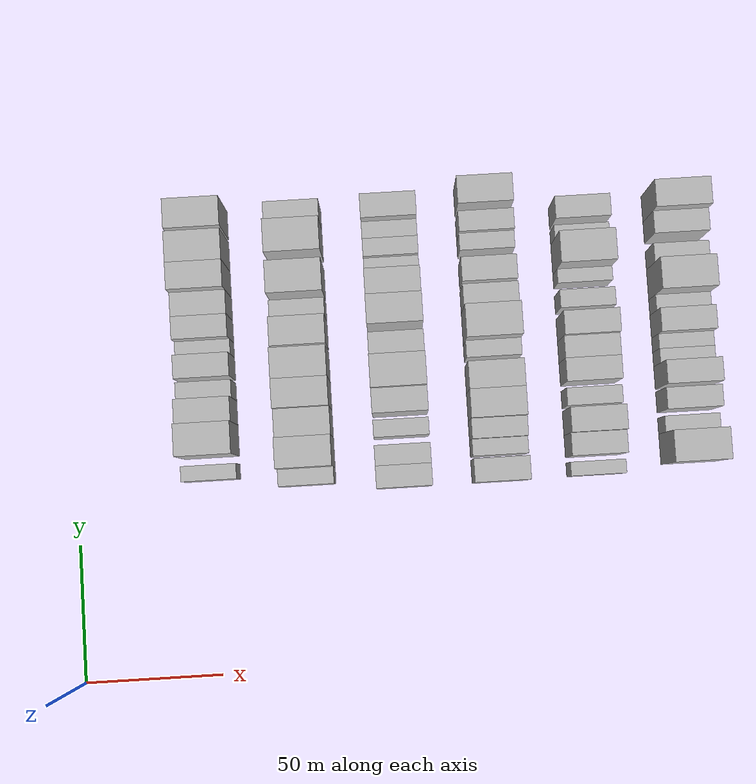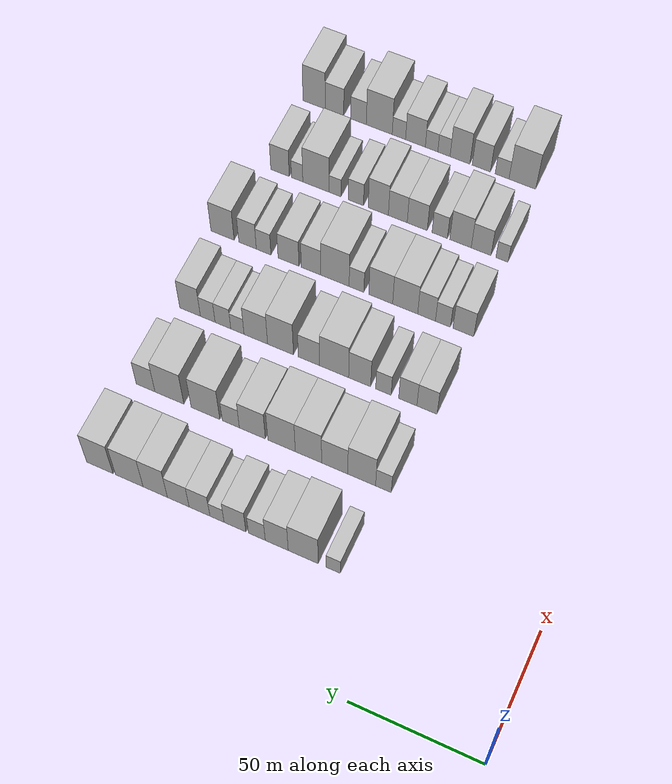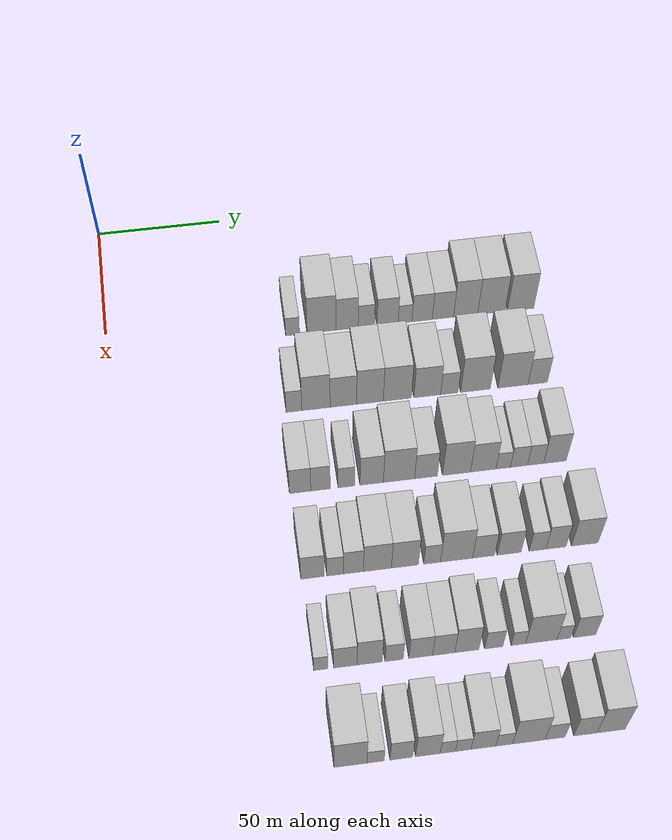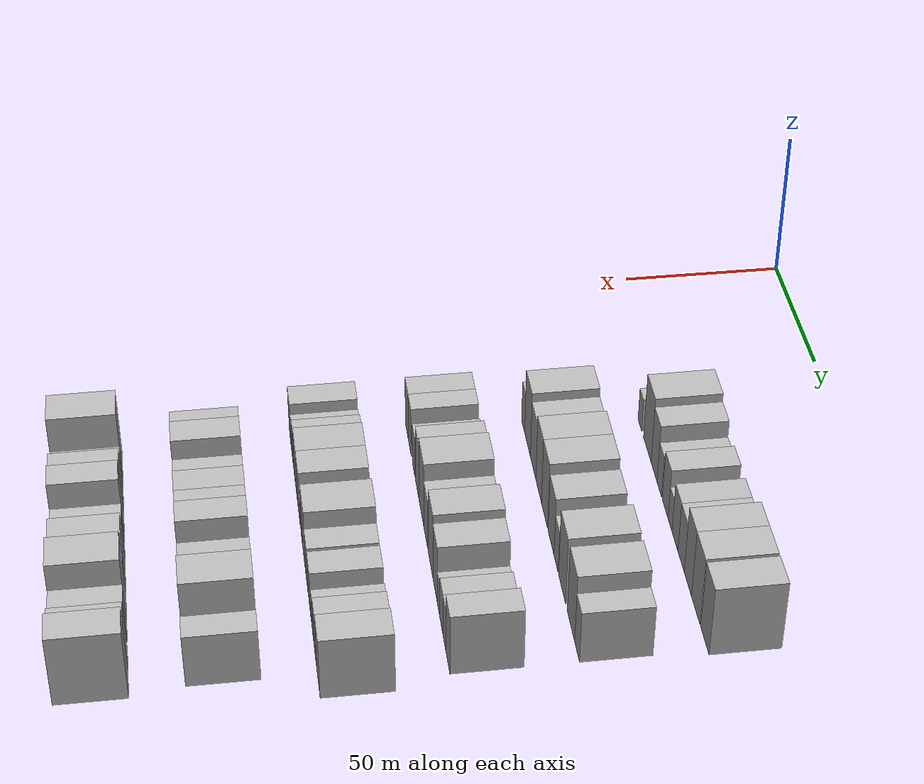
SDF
<sdf version="1.6">
 <world name="default">
  <model name="building_66">
   <static>1</static>
   <pose>50.0000 73.6622 0 0.000000 0.000000 0.000000</pose>
   <link name="link">
    <pose>0 0 6.00 0 0 0</pose>
    <collision name="collision"><geometry><box><size>20.0000 5.5355 12.0000</size></box></geometry></collision>
    <visual name="visual">
     <cast_shadows>0</cast_shadows>
     <geometry><box><size>20.0000 5.5355 12.0000</size></box></geometry>
     <material>
      <script>
       <uri>model://HANNAS_wall/materials/scripts</uri>
       <uri>model://HANNAS_wall/materials/textures</uri>
       <name>vrc/HANNAS_wall</name>
      </script>
     </material>
    </visual>
   </link>
  </model>
  <model name="building_67">
   <static>1</static>
   <pose>50.0000 85.2145 0 0.000000 0.000000 0.000000</pose>
   <link name="link">
    <pose>0 0 12.00 0 0 0</pose>
    <collision name="collision"><geometry><box><size>20.0000 11.5692 24.0000</size></box></geometry></collision>
    <visual name="visual">
     <cast_shadows>0</cast_shadows>
     <geometry><box><size>20.0000 11.5692 24.0000</size></box></geometry>
     <material>
      <script>
       <uri>model://HANNAS_wall/materials/scripts</uri>
       <uri>model://HANNAS_wall/materials/textures</uri>
       <name>vrc/HANNAS_wall</name>
      </script>
     </material>
    </visual>
   </link>
  </model>
  <model name="building_68">
   <static>1</static>
   <pose>50.0000 95.4609 0 0.000000 0.000000 0.000000</pose>
   <link name="link">
    <pose>0 0 10.50 0 0 0</pose>
    <collision name="collision"><geometry><box><size>20.0000 8.9235 21.0000</size></box></geometry></collision>
    <visual name="visual">
     <cast_shadows>0</cast_shadows>
     <geometry><box><size>20.0000 8.9235 21.0000</size></box></geometry>
     <material>
      <script>
       <uri>model://HANNAS_wall/materials/scripts</uri>
       <uri>model://HANNAS_wall/materials/textures</uri>
       <name>vrc/HANNAS_wall</name>
      </script>
     </material>
    </visual>
   </link>
  </model>
  <model name="building_69">
   <static>1</static>
   <pose>50.0000 103.2038 0 0.000000 0.000000 0.000000</pose>
   <link name="link">
    <pose>0 0 7.50 0 0 0</pose>
    <collision name="collision"><geometry><box><size>20.0000 6.5624 15.0000</size></box></geometry></collision>
    <visual name="visual">
     <cast_shadows>0</cast_shadows>
     <geometry><box><size>20.0000 6.5624 15.0000</size></box></geometry>
     <material>
      <script>
       <uri>model://HANNAS_wall/materials/scripts</uri>
       <uri>model://HANNAS_wall/materials/textures</uri>
       <name>vrc/HANNAS_wall</name>
      </script>
     </material>
    </visual>
   </link>
  </model>
  <model name="building_70">
   <static>1</static>
   <pose>50.0000 111.7547 0 0.000000 0.000000 0.000000</pose>
   <link name="link">
    <pose>0 0 9.00 0 0 0</pose>
    <collision name="collision"><geometry><box><size>20.0000 8.5394 18.0000</size></box></geometry></collision>
    <visual name="visual">
     <cast_shadows>0</cast_shadows>
     <geometry><box><size>20.0000 8.5394 18.0000</size></box></geometry>
     <material>
      <script>
       <uri>model://HANNAS_wall/materials/scripts</uri>
       <uri>model://HANNAS_wall/materials/textures</uri>
       <name>vrc/HANNAS_wall</name>
      </script>
     </material>
    </visual>
   </link>
  </model>
  <model name="building_71">
   <static>1</static>
   <pose>50.0000 118.8188 0 0.000000 0.000000 0.000000</pose>
   <link name="link">
    <pose>0 0 6.00 0 0 0</pose>
    <collision name="collision"><geometry><box><size>20.0000 5.5887 12.0000</size></box></geometry></collision>
    <visual name="visual">
     <cast_shadows>0</cast_shadows>
     <geometry><box><size>20.0000 5.5887 12.0000</size></box></geometry>
     <material>
      <script>
       <uri>model://HANNAS_wall/materials/scripts</uri>
       <uri>model://HANNAS_wall/materials/textures</uri>
       <name>vrc/HANNAS_wall</name>
      </script>
     </material>
    </visual>
   </link>
  </model>
  <model name="building_72">
   <static>1</static>
   <pose>50.0000 125.7364 0 0.000000 0.000000 0.000000</pose>
   <link name="link">
    <pose>0 0 9.00 0 0 0</pose>
    <collision name="collision"><geometry><box><size>20.0000 8.2465 18.0000</size></box></geometry></collision>
    <visual name="visual">
     <cast_shadows>0</cast_shadows>
     <geometry><box><size>20.0000 8.2465 18.0000</size></box></geometry>
     <material>
      <script>
       <uri>model://HANNAS_wall/materials/scripts</uri>
       <uri>model://HANNAS_wall/materials/textures</uri>
       <name>vrc/HANNAS_wall</name>
      </script>
     </material>
    </visual>
   </link>
  </model>
  <model name="building_73">
   <static>1</static>
   <pose>50.0000 134.1838 0 0.000000 0.000000 0.000000</pose>
   <link name="link">
    <pose>0 0 9.00 0 0 0</pose>
    <collision name="collision"><geometry><box><size>20.0000 8.6482 18.0000</size></box></geometry></collision>
    <visual name="visual">
     <cast_shadows>0</cast_shadows>
     <geometry><box><size>20.0000 8.6482 18.0000</size></box></geometry>
     <material>
      <script>
       <uri>model://HANNAS_wall/materials/scripts</uri>
       <uri>model://HANNAS_wall/materials/textures</uri>
       <name>vrc/HANNAS_wall</name>
      </script>
     </material>
    </visual>
   </link>
  </model>
  <model name="building_74">
   <static>1</static>
   <pose>50.0000 143.3903 0 0.000000 0.000000 0.000000</pose>
   <link name="link">
    <pose>0 0 12.00 0 0 0</pose>
    <collision name="collision"><geometry><box><size>20.0000 9.7649 24.0000</size></box></geometry></collision>
    <visual name="visual">
     <cast_shadows>0</cast_shadows>
     <geometry><box><size>20.0000 9.7649 24.0000</size></box></geometry>
     <material>
      <script>
       <uri>model://HANNAS_wall/materials/scripts</uri>
       <uri>model://HANNAS_wall/materials/textures</uri>
       <name>vrc/HANNAS_wall</name>
      </script>
     </material>
    </visual>
   </link>
  </model>
  <model name="building_75">
   <static>1</static>
   <pose>50.0000 153.8451 0 0.000000 0.000000 0.000000</pose>
   <link name="link">
    <pose>0 0 12.00 0 0 0</pose>
    <collision name="collision"><geometry><box><size>20.0000 11.1446 24.0000</size></box></geometry></collision>
    <visual name="visual">
     <cast_shadows>0</cast_shadows>
     <geometry><box><size>20.0000 11.1446 24.0000</size></box></geometry>
     <material>
      <script>
       <uri>model://HANNAS_wall/materials/scripts</uri>
       <uri>model://HANNAS_wall/materials/textures</uri>
       <name>vrc/HANNAS_wall</name>
      </script>
     </material>
    </visual>
   </link>
  </model>
  <model name="building_76">
   <static>1</static>
   <pose>50.0000 165.7647 0 0.000000 0.000000 0.000000</pose>
   <link name="link">
    <pose>0 0 12.00 0 0 0</pose>
    <collision name="collision"><geometry><box><size>20.0000 10.6947 24.0000</size></box></geometry></collision>
    <visual name="visual">
     <cast_shadows>0</cast_shadows>
     <geometry><box><size>20.0000 10.6947 24.0000</size></box></geometry>
     <material>
      <script>
       <uri>model://HANNAS_wall/materials/scripts</uri>
       <uri>model://HANNAS_wall/materials/textures</uri>
       <name>vrc/HANNAS_wall</name>
      </script>
     </material>
    </visual>
   </link>
  </model>
  <model name="building_200">
   <static>1</static>
   <pose>85.0000 70.0856 0 0.000000 0.000000 0.000000</pose>
   <link name="link">
    <pose>0 0 7.50 0 0 0</pose>
    <collision name="collision"><geometry><box><size>20.0000 6.0896 15.0000</size></box></geometry></collision>
    <visual name="visual">
     <cast_shadows>0</cast_shadows>
     <geometry><box><size>20.0000 6.0896 15.0000</size></box></geometry>
     <material>
      <script>
       <uri>model://HANNAS_wall/materials/scripts</uri>
       <uri>model://HANNAS_wall/materials/textures</uri>
       <name>vrc/HANNAS_wall</name>
      </script>
     </material>
    </visual>
   </link>
  </model>
  <model name="building_201">
   <static>1</static>
   <pose>85.0000 78.6139 0 0.000000 0.000000 0.000000</pose>
   <link name="link">
    <pose>0 0 12.00 0 0 0</pose>
    <collision name="collision"><geometry><box><size>20.0000 10.9671 24.0000</size></box></geometry></collision>
    <visual name="visual">
     <cast_shadows>0</cast_shadows>
     <geometry><box><size>20.0000 10.9671 24.0000</size></box></geometry>
     <material>
      <script>
       <uri>model://HANNAS_wall/materials/scripts</uri>
       <uri>model://HANNAS_wall/materials/textures</uri>
       <name>vrc/HANNAS_wall</name>
      </script>
     </material>
    </visual>
   </link>
  </model>
  <model name="building_202">
   <static>1</static>
   <pose>85.0000 89.2255 0 0.000000 0.000000 0.000000</pose>
   <link name="link">
    <pose>0 0 10.50 0 0 0</pose>
    <collision name="collision"><geometry><box><size>20.0000 10.2559 21.0000</size></box></geometry></collision>
    <visual name="visual">
     <cast_shadows>0</cast_shadows>
     <geometry><box><size>20.0000 10.2559 21.0000</size></box></geometry>
     <material>
      <script>
       <uri>model://HANNAS_wall/materials/scripts</uri>
       <uri>model://HANNAS_wall/materials/textures</uri>
       <name>vrc/HANNAS_wall</name>
      </script>
     </material>
    </visual>
   </link>
  </model>
  <model name="building_203">
   <static>1</static>
   <pose>85.0000 99.5866 0 0.000000 0.000000 0.000000</pose>
   <link name="link">
    <pose>0 0 12.00 0 0 0</pose>
    <collision name="collision"><geometry><box><size>20.0000 10.4663 24.0000</size></box></geometry></collision>
    <visual name="visual">
     <cast_shadows>0</cast_shadows>
     <geometry><box><size>20.0000 10.4663 24.0000</size></box></geometry>
     <material>
      <script>
       <uri>model://HANNAS_wall/materials/scripts</uri>
       <uri>model://HANNAS_wall/materials/textures</uri>
       <name>vrc/HANNAS_wall</name>
      </script>
     </material>
    </visual>
   </link>
  </model>
  <model name="building_204">
   <static>1</static>
   <pose>85.0000 110.2987 0 0.000000 0.000000 0.000000</pose>
   <link name="link">
    <pose>0 0 12.00 0 0 0</pose>
    <collision name="collision"><geometry><box><size>20.0000 10.9579 24.0000</size></box></geometry></collision>
    <visual name="visual">
     <cast_shadows>0</cast_shadows>
     <geometry><box><size>20.0000 10.9579 24.0000</size></box></geometry>
     <material>
      <script>
       <uri>model://HANNAS_wall/materials/scripts</uri>
       <uri>model://HANNAS_wall/materials/textures</uri>
       <name>vrc/HANNAS_wall</name>
      </script>
     </material>
    </visual>
   </link>
  </model>
  <model name="building_205">
   <static>1</static>
   <pose>85.0000 122.0157 0 0.000000 0.000000 0.000000</pose>
   <link name="link">
    <pose>0 0 10.50 0 0 0</pose>
    <collision name="collision"><geometry><box><size>20.0000 10.4762 21.0000</size></box></geometry></collision>
    <visual name="visual">
     <cast_shadows>0</cast_shadows>
     <geometry><box><size>20.0000 10.4762 21.0000</size></box></geometry>
     <material>
      <script>
       <uri>model://HANNAS_wall/materials/scripts</uri>
       <uri>model://HANNAS_wall/materials/textures</uri>
       <name>vrc/HANNAS_wall</name>
      </script>
     </material>
    </visual>
   </link>
  </model>
  <model name="building_206">
   <static>1</static>
   <pose>85.0000 130.7040 0 0.000000 0.000000 0.000000</pose>
   <link name="link">
    <pose>0 0 7.50 0 0 0</pose>
    <collision name="collision"><geometry><box><size>20.0000 6.9004 15.0000</size></box></geometry></collision>
    <visual name="visual">
     <cast_shadows>0</cast_shadows>
     <geometry><box><size>20.0000 6.9004 15.0000</size></box></geometry>
     <material>
      <script>
       <uri>model://HANNAS_wall/materials/scripts</uri>
       <uri>model://HANNAS_wall/materials/textures</uri>
       <name>vrc/HANNAS_wall</name>
      </script>
     </material>
    </visual>
   </link>
  </model>
  <model name="building_207">
   <static>1</static>
   <pose>85.0000 141.0026 0 0.000000 0.000000 0.000000</pose>
   <link name="link">
    <pose>0 0 12.00 0 0 0</pose>
    <collision name="collision"><geometry><box><size>20.0000 11.6968 24.0000</size></box></geometry></collision>
    <visual name="visual">
     <cast_shadows>0</cast_shadows>
     <geometry><box><size>20.0000 11.6968 24.0000</size></box></geometry>
     <material>
      <script>
       <uri>model://HANNAS_wall/materials/scripts</uri>
       <uri>model://HANNAS_wall/materials/textures</uri>
       <name>vrc/HANNAS_wall</name>
      </script>
     </material>
    </visual>
   </link>
  </model>
  <model name="building_208">
   <static>1</static>
   <pose>85.0000 155.7988 0 0.000000 0.000000 0.000000</pose>
   <link name="link">
    <pose>0 0 12.00 0 0 0</pose>
    <collision name="collision"><geometry><box><size>20.0000 11.8956 24.0000</size></box></geometry></collision>
    <visual name="visual">
     <cast_shadows>0</cast_shadows>
     <geometry><box><size>20.0000 11.8956 24.0000</size></box></geometry>
     <material>
      <script>
       <uri>model://HANNAS_wall/materials/scripts</uri>
       <uri>model://HANNAS_wall/materials/textures</uri>
       <name>vrc/HANNAS_wall</name>
      </script>
     </material>
    </visual>
   </link>
  </model>
  <model name="building_209">
   <static>1</static>
   <pose>85.0000 165.6041 0 0.000000 0.000000 0.000000</pose>
   <link name="link">
    <pose>0 0 9.00 0 0 0</pose>
    <collision name="collision"><geometry><box><size>20.0000 7.7152 18.0000</size></box></geometry></collision>
    <visual name="visual">
     <cast_shadows>0</cast_shadows>
     <geometry><box><size>20.0000 7.7152 18.0000</size></box></geometry>
     <material>
      <script>
       <uri>model://HANNAS_wall/materials/scripts</uri>
       <uri>model://HANNAS_wall/materials/textures</uri>
       <name>vrc/HANNAS_wall</name>
      </script>
     </material>
    </visual>
   </link>
  </model>
  <model name="building_317">
   <static>1</static>
   <pose>120.0000 68.2392 0 0.000000 0.000000 0.000000</pose>
   <link name="link">
    <pose>0 0 9.00 0 0 0</pose>
    <collision name="collision"><geometry><box><size>20.0000 8.0052 18.0000</size></box></geometry></collision>
    <visual name="visual">
     <cast_shadows>0</cast_shadows>
     <geometry><box><size>20.0000 8.0052 18.0000</size></box></geometry>
     <material>
      <script>
       <uri>model://HANNAS_wall/materials/scripts</uri>
       <uri>model://HANNAS_wall/materials/textures</uri>
       <name>vrc/HANNAS_wall</name>
      </script>
     </material>
    </visual>
   </link>
  </model>
  <model name="building_318">
   <static>1</static>
   <pose>120.0000 75.8827 0 0.000000 0.000000 0.000000</pose>
   <link name="link">
    <pose>0 0 9.00 0 0 0</pose>
    <collision name="collision"><geometry><box><size>20.0000 7.2819 18.0000</size></box></geometry></collision>
    <visual name="visual">
     <cast_shadows>0</cast_shadows>
     <geometry><box><size>20.0000 7.2819 18.0000</size></box></geometry>
     <material>
      <script>
       <uri>model://HANNAS_wall/materials/scripts</uri>
       <uri>model://HANNAS_wall/materials/textures</uri>
       <name>vrc/HANNAS_wall</name>
      </script>
     </material>
    </visual>
   </link>
  </model>
  <model name="building_319">
   <static>1</static>
   <pose>120.0000 85.6360 0 0.000000 0.000000 0.000000</pose>
   <link name="link">
    <pose>0 0 7.50 0 0 0</pose>
    <collision name="collision"><geometry><box><size>20.0000 6.2247 15.0000</size></box></geometry></collision>
    <visual name="visual">
     <cast_shadows>0</cast_shadows>
     <geometry><box><size>20.0000 6.2247 15.0000</size></box></geometry>
     <material>
      <script>
       <uri>model://HANNAS_wall/materials/scripts</uri>
       <uri>model://HANNAS_wall/materials/textures</uri>
       <name>vrc/HANNAS_wall</name>
      </script>
     </material>
    </visual>
   </link>
  </model>
  <model name="building_320">
   <static>1</static>
   <pose>120.0000 95.1866 0 0.000000 0.000000 0.000000</pose>
   <link name="link">
    <pose>0 0 10.50 0 0 0</pose>
    <collision name="collision"><geometry><box><size>20.0000 8.8765 21.0000</size></box></geometry></collision>
    <visual name="visual">
     <cast_shadows>0</cast_shadows>
     <geometry><box><size>20.0000 8.8765 21.0000</size></box></geometry>
     <material>
      <script>
       <uri>model://HANNAS_wall/materials/scripts</uri>
       <uri>model://HANNAS_wall/materials/textures</uri>
       <name>vrc/HANNAS_wall</name>
      </script>
     </material>
    </visual>
   </link>
  </model>
  <model name="building_321">
   <static>1</static>
   <pose>120.0000 105.5461 0 0.000000 0.000000 0.000000</pose>
   <link name="link">
    <pose>0 0 12.00 0 0 0</pose>
    <collision name="collision"><geometry><box><size>20.0000 11.8425 24.0000</size></box></geometry></collision>
    <visual name="visual">
     <cast_shadows>0</cast_shadows>
     <geometry><box><size>20.0000 11.8425 24.0000</size></box></geometry>
     <material>
      <script>
       <uri>model://HANNAS_wall/materials/scripts</uri>
       <uri>model://HANNAS_wall/materials/textures</uri>
       <name>vrc/HANNAS_wall</name>
      </script>
     </material>
    </visual>
   </link>
  </model>
  <model name="building_322">
   <static>1</static>
   <pose>120.0000 115.7819 0 0.000000 0.000000 0.000000</pose>
   <link name="link">
    <pose>0 0 9.00 0 0 0</pose>
    <collision name="collision"><geometry><box><size>20.0000 8.6290 18.0000</size></box></geometry></collision>
    <visual name="visual">
     <cast_shadows>0</cast_shadows>
     <geometry><box><size>20.0000 8.6290 18.0000</size></box></geometry>
     <material>
      <script>
       <uri>model://HANNAS_wall/materials/scripts</uri>
       <uri>model://HANNAS_wall/materials/textures</uri>
       <name>vrc/HANNAS_wall</name>
      </script>
     </material>
    </visual>
   </link>
  </model>
  <model name="building_323">
   <static>1</static>
   <pose>120.0000 127.4299 0 0.000000 0.000000 0.000000</pose>
   <link name="link">
    <pose>0 0 12.00 0 0 0</pose>
    <collision name="collision"><geometry><box><size>20.0000 10.6669 24.0000</size></box></geometry></collision>
    <visual name="visual">
     <cast_shadows>0</cast_shadows>
     <geometry><box><size>20.0000 10.6669 24.0000</size></box></geometry>
     <material>
      <script>
       <uri>model://HANNAS_wall/materials/scripts</uri>
       <uri>model://HANNAS_wall/materials/textures</uri>
       <name>vrc/HANNAS_wall</name>
      </script>
     </material>
    </visual>
   </link>
  </model>
  <model name="building_324">
   <static>1</static>
   <pose>120.0000 137.6440 0 0.000000 0.000000 0.000000</pose>
   <link name="link">
    <pose>0 0 10.50 0 0 0</pose>
    <collision name="collision"><geometry><box><size>20.0000 9.7614 21.0000</size></box></geometry></collision>
    <visual name="visual">
     <cast_shadows>0</cast_shadows>
     <geometry><box><size>20.0000 9.7614 21.0000</size></box></geometry>
     <material>
      <script>
       <uri>model://HANNAS_wall/materials/scripts</uri>
       <uri>model://HANNAS_wall/materials/textures</uri>
       <name>vrc/HANNAS_wall</name>
      </script>
     </material>
    </visual>
   </link>
  </model>
  <model name="building_325">
   <static>1</static>
   <pose>120.0000 145.2863 0 0.000000 0.000000 0.000000</pose>
   <link name="link">
    <pose>0 0 6.00 0 0 0</pose>
    <collision name="collision"><geometry><box><size>20.0000 5.5233 12.0000</size></box></geometry></collision>
    <visual name="visual">
     <cast_shadows>0</cast_shadows>
     <geometry><box><size>20.0000 5.5233 12.0000</size></box></geometry>
     <material>
      <script>
       <uri>model://HANNAS_wall/materials/scripts</uri>
       <uri>model://HANNAS_wall/materials/textures</uri>
       <name>vrc/HANNAS_wall</name>
      </script>
     </material>
    </visual>
   </link>
  </model>
  <model name="building_326">
   <static>1</static>
   <pose>120.0000 151.3237 0 0.000000 0.000000 0.000000</pose>
   <link name="link">
    <pose>0 0 7.50 0 0 0</pose>
    <collision name="collision"><geometry><box><size>20.0000 6.5514 15.0000</size></box></geometry></collision>
    <visual name="visual">
     <cast_shadows>0</cast_shadows>
     <geometry><box><size>20.0000 6.5514 15.0000</size></box></geometry>
     <material>
      <script>
       <uri>model://HANNAS_wall/materials/scripts</uri>
       <uri>model://HANNAS_wall/materials/textures</uri>
       <name>vrc/HANNAS_wall</name>
      </script>
     </material>
    </visual>
   </link>
  </model>
  <model name="building_327">
   <static>1</static>
   <pose>120.0000 157.6786 0 0.000000 0.000000 0.000000</pose>
   <link name="link">
    <pose>0 0 7.50 0 0 0</pose>
    <collision name="collision"><geometry><box><size>20.0000 6.1584 15.0000</size></box></geometry></collision>
    <visual name="visual">
     <cast_shadows>0</cast_shadows>
     <geometry><box><size>20.0000 6.1584 15.0000</size></box></geometry>
     <material>
      <script>
       <uri>model://HANNAS_wall/materials/scripts</uri>
       <uri>model://HANNAS_wall/materials/textures</uri>
       <name>vrc/HANNAS_wall</name>
      </script>
     </material>
    </visual>
   </link>
  </model>
  <model name="building_328">
   <static>1</static>
   <pose>120.0000 165.1004 0 0.000000 0.000000 0.000000</pose>
   <link name="link">
    <pose>0 0 10.50 0 0 0</pose>
    <collision name="collision"><geometry><box><size>20.0000 8.6852 21.0000</size></box></geometry></collision>
    <visual name="visual">
     <cast_shadows>0</cast_shadows>
     <geometry><box><size>20.0000 8.6852 21.0000</size></box></geometry>
     <material>
      <script>
       <uri>model://HANNAS_wall/materials/scripts</uri>
       <uri>model://HANNAS_wall/materials/textures</uri>
       <name>vrc/HANNAS_wall</name>
      </script>
     </material>
    </visual>
   </link>
  </model>
  <model name="building_438">
   <static>1</static>
   <pose>155.0000 68.5002 0 0.000000 0.000000 0.000000</pose>
   <link name="link">
    <pose>0 0 9.00 0 0 0</pose>
    <collision name="collision"><geometry><box><size>20.0000 8.4649 18.0000</size></box></geometry></collision>
    <visual name="visual">
     <cast_shadows>0</cast_shadows>
     <geometry><box><size>20.0000 8.4649 18.0000</size></box></geometry>
     <material>
      <script>
       <uri>model://HANNAS_wall/materials/scripts</uri>
       <uri>model://HANNAS_wall/materials/textures</uri>
       <name>vrc/HANNAS_wall</name>
      </script>
     </material>
    </visual>
   </link>
  </model>
  <model name="building_439">
   <static>1</static>
   <pose>155.0000 76.7738 0 0.000000 0.000000 0.000000</pose>
   <link name="link">
    <pose>0 0 7.50 0 0 0</pose>
    <collision name="collision"><geometry><box><size>20.0000 6.0822 15.0000</size></box></geometry></collision>
    <visual name="visual">
     <cast_shadows>0</cast_shadows>
     <geometry><box><size>20.0000 6.0822 15.0000</size></box></geometry>
     <material>
      <script>
       <uri>model://HANNAS_wall/materials/scripts</uri>
       <uri>model://HANNAS_wall/materials/textures</uri>
       <name>vrc/HANNAS_wall</name>
      </script>
     </material>
    </visual>
   </link>
  </model>
  <model name="building_440">
   <static>1</static>
   <pose>155.0000 83.4387 0 0.000000 0.000000 0.000000</pose>
   <link name="link">
    <pose>0 0 9.00 0 0 0</pose>
    <collision name="collision"><geometry><box><size>20.0000 7.2476 18.0000</size></box></geometry></collision>
    <visual name="visual">
     <cast_shadows>0</cast_shadows>
     <geometry><box><size>20.0000 7.2476 18.0000</size></box></geometry>
     <material>
      <script>
       <uri>model://HANNAS_wall/materials/scripts</uri>
       <uri>model://HANNAS_wall/materials/textures</uri>
       <name>vrc/HANNAS_wall</name>
      </script>
     </material>
    </visual>
   </link>
  </model>
  <model name="building_441">
   <static>1</static>
   <pose>155.0000 92.2007 0 0.000000 0.000000 0.000000</pose>
   <link name="link">
    <pose>0 0 10.50 0 0 0</pose>
    <collision name="collision"><geometry><box><size>20.0000 10.2766 21.0000</size></box></geometry></collision>
    <visual name="visual">
     <cast_shadows>0</cast_shadows>
     <geometry><box><size>20.0000 10.2766 21.0000</size></box></geometry>
     <material>
      <script>
       <uri>model://HANNAS_wall/materials/scripts</uri>
       <uri>model://HANNAS_wall/materials/textures</uri>
       <name>vrc/HANNAS_wall</name>
      </script>
     </material>
    </visual>
   </link>
  </model>
  <model name="building_442">
   <static>1</static>
   <pose>155.0000 102.2745 0 0.000000 0.000000 0.000000</pose>
   <link name="link">
    <pose>0 0 10.50 0 0 0</pose>
    <collision name="collision"><geometry><box><size>20.0000 9.8709 21.0000</size></box></geometry></collision>
    <visual name="visual">
     <cast_shadows>0</cast_shadows>
     <geometry><box><size>20.0000 9.8709 21.0000</size></box></geometry>
     <material>
      <script>
       <uri>model://HANNAS_wall/materials/scripts</uri>
       <uri>model://HANNAS_wall/materials/textures</uri>
       <name>vrc/HANNAS_wall</name>
      </script>
     </material>
    </visual>
   </link>
  </model>
  <model name="building_443">
   <static>1</static>
   <pose>155.0000 112.2857 0 0.000000 0.000000 0.000000</pose>
   <link name="link">
    <pose>0 0 7.50 0 0 0</pose>
    <collision name="collision"><geometry><box><size>20.0000 6.1515 15.0000</size></box></geometry></collision>
    <visual name="visual">
     <cast_shadows>0</cast_shadows>
     <geometry><box><size>20.0000 6.1515 15.0000</size></box></geometry>
     <material>
      <script>
       <uri>model://HANNAS_wall/materials/scripts</uri>
       <uri>model://HANNAS_wall/materials/textures</uri>
       <name>vrc/HANNAS_wall</name>
      </script>
     </material>
    </visual>
   </link>
  </model>
  <model name="building_444">
   <static>1</static>
   <pose>155.0000 121.2841 0 0.000000 0.000000 0.000000</pose>
   <link name="link">
    <pose>0 0 12.00 0 0 0</pose>
    <collision name="collision"><geometry><box><size>20.0000 11.8455 24.0000</size></box></geometry></collision>
    <visual name="visual">
     <cast_shadows>0</cast_shadows>
     <geometry><box><size>20.0000 11.8455 24.0000</size></box></geometry>
     <material>
      <script>
       <uri>model://HANNAS_wall/materials/scripts</uri>
       <uri>model://HANNAS_wall/materials/textures</uri>
       <name>vrc/HANNAS_wall</name>
      </script>
     </material>
    </visual>
   </link>
  </model>
  <model name="building_445">
   <static>1</static>
   <pose>155.0000 131.2844 0 0.000000 0.000000 0.000000</pose>
   <link name="link">
    <pose>0 0 9.00 0 0 0</pose>
    <collision name="collision"><geometry><box><size>20.0000 8.1551 18.0000</size></box></geometry></collision>
    <visual name="visual">
     <cast_shadows>0</cast_shadows>
     <geometry><box><size>20.0000 8.1551 18.0000</size></box></geometry>
     <material>
      <script>
       <uri>model://HANNAS_wall/materials/scripts</uri>
       <uri>model://HANNAS_wall/materials/textures</uri>
       <name>vrc/HANNAS_wall</name>
      </script>
     </material>
    </visual>
   </link>
  </model>
  <model name="building_446">
   <static>1</static>
   <pose>155.0000 140.7761 0 0.000000 0.000000 0.000000</pose>
   <link name="link">
    <pose>0 0 9.00 0 0 0</pose>
    <collision name="collision"><geometry><box><size>20.0000 8.8284 18.0000</size></box></geometry></collision>
    <visual name="visual">
     <cast_shadows>0</cast_shadows>
     <geometry><box><size>20.0000 8.8284 18.0000</size></box></geometry>
     <material>
      <script>
       <uri>model://HANNAS_wall/materials/scripts</uri>
       <uri>model://HANNAS_wall/materials/textures</uri>
       <name>vrc/HANNAS_wall</name>
      </script>
     </material>
    </visual>
   </link>
  </model>
  <model name="building_447">
   <static>1</static>
   <pose>155.0000 151.3047 0 0.000000 0.000000 0.000000</pose>
   <link name="link">
    <pose>0 0 7.50 0 0 0</pose>
    <collision name="collision"><geometry><box><size>20.0000 6.2287 15.0000</size></box></geometry></collision>
    <visual name="visual">
     <cast_shadows>0</cast_shadows>
     <geometry><box><size>20.0000 6.2287 15.0000</size></box></geometry>
     <material>
      <script>
       <uri>model://HANNAS_wall/materials/scripts</uri>
       <uri>model://HANNAS_wall/materials/textures</uri>
       <name>vrc/HANNAS_wall</name>
      </script>
     </material>
    </visual>
   </link>
  </model>
  <model name="building_448">
   <static>1</static>
   <pose>155.0000 158.1606 0 0.000000 0.000000 0.000000</pose>
   <link name="link">
    <pose>0 0 9.00 0 0 0</pose>
    <collision name="collision"><geometry><box><size>20.0000 7.4830 18.0000</size></box></geometry></collision>
    <visual name="visual">
     <cast_shadows>0</cast_shadows>
     <geometry><box><size>20.0000 7.4830 18.0000</size></box></geometry>
     <material>
      <script>
       <uri>model://HANNAS_wall/materials/scripts</uri>
       <uri>model://HANNAS_wall/materials/textures</uri>
       <name>vrc/HANNAS_wall</name>
      </script>
     </material>
    </visual>
   </link>
  </model>
  <model name="building_449">
   <static>1</static>
   <pose>155.0000 168.8871 0 0.000000 0.000000 0.000000</pose>
   <link name="link">
    <pose>0 0 10.50 0 0 0</pose>
    <collision name="collision"><geometry><box><size>20.0000 9.9700 21.0000</size></box></geometry></collision>
    <visual name="visual">
     <cast_shadows>0</cast_shadows>
     <geometry><box><size>20.0000 9.9700 21.0000</size></box></geometry>
     <material>
      <script>
       <uri>model://HANNAS_wall/materials/scripts</uri>
       <uri>model://HANNAS_wall/materials/textures</uri>
       <name>vrc/HANNAS_wall</name>
      </script>
     </material>
    </visual>
   </link>
  </model>
  <model name="building_562">
   <static>1</static>
   <pose>190.0000 67.1172 0 0.000000 0.000000 0.000000</pose>
   <link name="link">
    <pose>0 0 6.00 0 0 0</pose>
    <collision name="collision"><geometry><box><size>20.0000 5.0401 12.0000</size></box></geometry></collision>
    <visual name="visual">
     <cast_shadows>0</cast_shadows>
     <geometry><box><size>20.0000 5.0401 12.0000</size></box></geometry>
     <material>
      <script>
       <uri>model://HANNAS_wall/materials/scripts</uri>
       <uri>model://HANNAS_wall/materials/textures</uri>
       <name>vrc/HANNAS_wall</name>
      </script>
     </material>
    </visual>
   </link>
  </model>
  <model name="building_563">
   <static>1</static>
   <pose>190.0000 75.7332 0 0.000000 0.000000 0.000000</pose>
   <link name="link">
    <pose>0 0 9.00 0 0 0</pose>
    <collision name="collision"><geometry><box><size>20.0000 8.1919 18.0000</size></box></geometry></collision>
    <visual name="visual">
     <cast_shadows>0</cast_shadows>
     <geometry><box><size>20.0000 8.1919 18.0000</size></box></geometry>
     <material>
      <script>
       <uri>model://HANNAS_wall/materials/scripts</uri>
       <uri>model://HANNAS_wall/materials/textures</uri>
       <name>vrc/HANNAS_wall</name>
      </script>
     </material>
    </visual>
   </link>
  </model>
  <model name="building_564">
   <static>1</static>
   <pose>190.0000 84.2913 0 0.000000 0.000000 0.000000</pose>
   <link name="link">
    <pose>0 0 10.50 0 0 0</pose>
    <collision name="collision"><geometry><box><size>20.0000 8.9243 21.0000</size></box></geometry></collision>
    <visual name="visual">
     <cast_shadows>0</cast_shadows>
     <geometry><box><size>20.0000 8.9243 21.0000</size></box></geometry>
     <material>
      <script>
       <uri>model://HANNAS_wall/materials/scripts</uri>
       <uri>model://HANNAS_wall/materials/textures</uri>
       <name>vrc/HANNAS_wall</name>
      </script>
     </material>
    </visual>
   </link>
  </model>
  <model name="building_565">
   <static>1</static>
   <pose>190.0000 92.9649 0 0.000000 0.000000 0.000000</pose>
   <link name="link">
    <pose>0 0 7.50 0 0 0</pose>
    <collision name="collision"><geometry><box><size>20.0000 6.4229 15.0000</size></box></geometry></collision>
    <visual name="visual">
     <cast_shadows>0</cast_shadows>
     <geometry><box><size>20.0000 6.4229 15.0000</size></box></geometry>
     <material>
      <script>
       <uri>model://HANNAS_wall/materials/scripts</uri>
       <uri>model://HANNAS_wall/materials/textures</uri>
       <name>vrc/HANNAS_wall</name>
      </script>
     </material>
    </visual>
   </link>
  </model>
  <model name="building_566">
   <static>1</static>
   <pose>190.0000 102.3924 0 0.000000 0.000000 0.000000</pose>
   <link name="link">
    <pose>0 0 9.00 0 0 0</pose>
    <collision name="collision"><geometry><box><size>20.0000 8.4321 18.0000</size></box></geometry></collision>
    <visual name="visual">
     <cast_shadows>0</cast_shadows>
     <geometry><box><size>20.0000 8.4321 18.0000</size></box></geometry>
     <material>
      <script>
       <uri>model://HANNAS_wall/materials/scripts</uri>
       <uri>model://HANNAS_wall/materials/textures</uri>
       <name>vrc/HANNAS_wall</name>
      </script>
     </material>
    </visual>
   </link>
  </model>
  <model name="building_567">
   <static>1</static>
   <pose>190.0000 110.5920 0 0.000000 0.000000 0.000000</pose>
   <link name="link">
    <pose>0 0 9.00 0 0 0</pose>
    <collision name="collision"><geometry><box><size>20.0000 7.9670 18.0000</size></box></geometry></collision>
    <visual name="visual">
     <cast_shadows>0</cast_shadows>
     <geometry><box><size>20.0000 7.9670 18.0000</size></box></geometry>
     <material>
      <script>
       <uri>model://HANNAS_wall/materials/scripts</uri>
       <uri>model://HANNAS_wall/materials/textures</uri>
       <name>vrc/HANNAS_wall</name>
      </script>
     </material>
    </visual>
   </link>
  </model>
  <model name="building_568">
   <static>1</static>
   <pose>190.0000 118.8590 0 0.000000 0.000000 0.000000</pose>
   <link name="link">
    <pose>0 0 10.50 0 0 0</pose>
    <collision name="collision"><geometry><box><size>20.0000 8.5671 21.0000</size></box></geometry></collision>
    <visual name="visual">
     <cast_shadows>0</cast_shadows>
     <geometry><box><size>20.0000 8.5671 21.0000</size></box></geometry>
     <material>
      <script>
       <uri>model://HANNAS_wall/materials/scripts</uri>
       <uri>model://HANNAS_wall/materials/textures</uri>
       <name>vrc/HANNAS_wall</name>
      </script>
     </material>
    </visual>
   </link>
  </model>
  <model name="building_569">
   <static>1</static>
   <pose>190.0000 128.4245 0 0.000000 0.000000 0.000000</pose>
   <link name="link">
    <pose>0 0 7.50 0 0 0</pose>
    <collision name="collision"><geometry><box><size>20.0000 6.5639 15.0000</size></box></geometry></collision>
    <visual name="visual">
     <cast_shadows>0</cast_shadows>
     <geometry><box><size>20.0000 6.5639 15.0000</size></box></geometry>
     <material>
      <script>
       <uri>model://HANNAS_wall/materials/scripts</uri>
       <uri>model://HANNAS_wall/materials/textures</uri>
       <name>vrc/HANNAS_wall</name>
      </script>
     </material>
    </visual>
   </link>
  </model>
  <model name="building_570">
   <static>1</static>
   <pose>190.0000 137.2837 0 0.000000 0.000000 0.000000</pose>
   <link name="link">
    <pose>0 0 6.00 0 0 0</pose>
    <collision name="collision"><geometry><box><size>20.0000 5.1546 12.0000</size></box></geometry></collision>
    <visual name="visual">
     <cast_shadows>0</cast_shadows>
     <geometry><box><size>20.0000 5.1546 12.0000</size></box></geometry>
     <material>
      <script>
       <uri>model://HANNAS_wall/materials/scripts</uri>
       <uri>model://HANNAS_wall/materials/textures</uri>
       <name>vrc/HANNAS_wall</name>
      </script>
     </material>
    </visual>
   </link>
  </model>
  <model name="building_571">
   <static>1</static>
   <pose>190.0000 145.5332 0 0.000000 0.000000 0.000000</pose>
   <link name="link">
    <pose>0 0 12.00 0 0 0</pose>
    <collision name="collision"><geometry><box><size>20.0000 11.3443 24.0000</size></box></geometry></collision>
    <visual name="visual">
     <cast_shadows>0</cast_shadows>
     <geometry><box><size>20.0000 11.3443 24.0000</size></box></geometry>
     <material>
      <script>
       <uri>model://HANNAS_wall/materials/scripts</uri>
       <uri>model://HANNAS_wall/materials/textures</uri>
       <name>vrc/HANNAS_wall</name>
      </script>
     </material>
    </visual>
   </link>
  </model>
  <model name="building_572">
   <static>1</static>
   <pose>190.0000 153.6458 0 0.000000 0.000000 0.000000</pose>
   <link name="link">
    <pose>0 0 6.00 0 0 0</pose>
    <collision name="collision"><geometry><box><size>20.0000 4.8810 12.0000</size></box></geometry></collision>
    <visual name="visual">
     <cast_shadows>0</cast_shadows>
     <geometry><box><size>20.0000 4.8810 12.0000</size></box></geometry>
     <material>
      <script>
       <uri>model://HANNAS_wall/materials/scripts</uri>
       <uri>model://HANNAS_wall/materials/textures</uri>
       <name>vrc/HANNAS_wall</name>
      </script>
     </material>
    </visual>
   </link>
  </model>
  <model name="building_573">
   <static>1</static>
   <pose>190.0000 161.0983 0 0.000000 0.000000 0.000000</pose>
   <link name="link">
    <pose>0 0 9.00 0 0 0</pose>
    <collision name="collision"><geometry><box><size>20.0000 8.0241 18.0000</size></box></geometry></collision>
    <visual name="visual">
     <cast_shadows>0</cast_shadows>
     <geometry><box><size>20.0000 8.0241 18.0000</size></box></geometry>
     <material>
      <script>
       <uri>model://HANNAS_wall/materials/scripts</uri>
       <uri>model://HANNAS_wall/materials/textures</uri>
       <name>vrc/HANNAS_wall</name>
      </script>
     </material>
    </visual>
   </link>
  </model>
  <model name="building_695">
   <static>1</static>
   <pose>225.0000 72.7056 0 0.000000 0.000000 0.000000</pose>
   <link name="link">
    <pose>0 0 12.00 0 0 0</pose>
    <collision name="collision"><geometry><box><size>20.0000 11.2549 24.0000</size></box></geometry></collision>
    <visual name="visual">
     <cast_shadows>0</cast_shadows>
     <geometry><box><size>20.0000 11.2549 24.0000</size></box></geometry>
     <material>
      <script>
       <uri>model://HANNAS_wall/materials/scripts</uri>
       <uri>model://HANNAS_wall/materials/textures</uri>
       <name>vrc/HANNAS_wall</name>
      </script>
     </material>
    </visual>
   </link>
  </model>
  <model name="building_696">
   <static>1</static>
   <pose>225.0000 81.2618 0 0.000000 0.000000 0.000000</pose>
   <link name="link">
    <pose>0 0 6.00 0 0 0</pose>
    <collision name="collision"><geometry><box><size>20.0000 5.8577 12.0000</size></box></geometry></collision>
    <visual name="visual">
     <cast_shadows>0</cast_shadows>
     <geometry><box><size>20.0000 5.8577 12.0000</size></box></geometry>
     <material>
      <script>
       <uri>model://HANNAS_wall/materials/scripts</uri>
       <uri>model://HANNAS_wall/materials/textures</uri>
       <name>vrc/HANNAS_wall</name>
      </script>
     </material>
    </visual>
   </link>
  </model>
  <model name="building_697">
   <static>1</static>
   <pose>225.0000 90.0655 0 0.000000 0.000000 0.000000</pose>
   <link name="link">
    <pose>0 0 9.00 0 0 0</pose>
    <collision name="collision"><geometry><box><size>20.0000 7.7497 18.0000</size></box></geometry></collision>
    <visual name="visual">
     <cast_shadows>0</cast_shadows>
     <geometry><box><size>20.0000 7.7497 18.0000</size></box></geometry>
     <material>
      <script>
       <uri>model://HANNAS_wall/materials/scripts</uri>
       <uri>model://HANNAS_wall/materials/textures</uri>
       <name>vrc/HANNAS_wall</name>
      </script>
     </material>
    </visual>
   </link>
  </model>
  <model name="building_698">
   <static>1</static>
   <pose>225.0000 99.1735 0 0.000000 0.000000 0.000000</pose>
   <link name="link">
    <pose>0 0 10.50 0 0 0</pose>
    <collision name="collision"><geometry><box><size>20.0000 8.4662 21.0000</size></box></geometry></collision>
    <visual name="visual">
     <cast_shadows>0</cast_shadows>
     <geometry><box><size>20.0000 8.4662 21.0000</size></box></geometry>
     <material>
      <script>
       <uri>model://HANNAS_wall/materials/scripts</uri>
       <uri>model://HANNAS_wall/materials/textures</uri>
       <name>vrc/HANNAS_wall</name>
      </script>
     </material>
    </visual>
   </link>
  </model>
  <model name="building_699">
   <static>1</static>
   <pose>225.0000 106.0336 0 0.000000 0.000000 0.000000</pose>
   <link name="link">
    <pose>0 0 6.00 0 0 0</pose>
    <collision name="collision"><geometry><box><size>20.0000 5.2540 12.0000</size></box></geometry></collision>
    <visual name="visual">
     <cast_shadows>0</cast_shadows>
     <geometry><box><size>20.0000 5.2540 12.0000</size></box></geometry>
     <material>
      <script>
       <uri>model://HANNAS_wall/materials/scripts</uri>
       <uri>model://HANNAS_wall/materials/textures</uri>
       <name>vrc/HANNAS_wall</name>
      </script>
     </material>
    </visual>
   </link>
  </model>
  <model name="building_700">
   <static>1</static>
   <pose>225.0000 111.3486 0 0.000000 0.000000 0.000000</pose>
   <link name="link">
    <pose>0 0 6.00 0 0 0</pose>
    <collision name="collision"><geometry><box><size>20.0000 5.3758 12.0000</size></box></geometry></collision>
    <visual name="visual">
     <cast_shadows>0</cast_shadows>
     <geometry><box><size>20.0000 5.3758 12.0000</size></box></geometry>
     <material>
      <script>
       <uri>model://HANNAS_wall/materials/scripts</uri>
       <uri>model://HANNAS_wall/materials/textures</uri>
       <name>vrc/HANNAS_wall</name>
      </script>
     </material>
    </visual>
   </link>
  </model>
  <model name="building_701">
   <static>1</static>
   <pose>225.0000 118.3088 0 0.000000 0.000000 0.000000</pose>
   <link name="link">
    <pose>0 0 9.00 0 0 0</pose>
    <collision name="collision"><geometry><box><size>20.0000 8.5446 18.0000</size></box></geometry></collision>
    <visual name="visual">
     <cast_shadows>0</cast_shadows>
     <geometry><box><size>20.0000 8.5446 18.0000</size></box></geometry>
     <material>
      <script>
       <uri>model://HANNAS_wall/materials/scripts</uri>
       <uri>model://HANNAS_wall/materials/textures</uri>
       <name>vrc/HANNAS_wall</name>
      </script>
     </material>
    </visual>
   </link>
  </model>
  <model name="building_702">
   <static>1</static>
   <pose>225.0000 125.4771 0 0.000000 0.000000 0.000000</pose>
   <link name="link">
    <pose>0 0 6.00 0 0 0</pose>
    <collision name="collision"><geometry><box><size>20.0000 5.7922 12.0000</size></box></geometry></collision>
    <visual name="visual">
     <cast_shadows>0</cast_shadows>
     <geometry><box><size>20.0000 5.7922 12.0000</size></box></geometry>
     <material>
      <script>
       <uri>model://HANNAS_wall/materials/scripts</uri>
       <uri>model://HANNAS_wall/materials/textures</uri>
       <name>vrc/HANNAS_wall</name>
      </script>
     </material>
    </visual>
   </link>
  </model>
  <model name="building_703">
   <static>1</static>
   <pose>225.0000 134.0366 0 0.000000 0.000000 0.000000</pose>
   <link name="link">
    <pose>0 0 12.00 0 0 0</pose>
    <collision name="collision"><geometry><box><size>20.0000 11.3267 24.0000</size></box></geometry></collision>
    <visual name="visual">
     <cast_shadows>0</cast_shadows>
     <geometry><box><size>20.0000 11.3267 24.0000</size></box></geometry>
     <material>
      <script>
       <uri>model://HANNAS_wall/materials/scripts</uri>
       <uri>model://HANNAS_wall/materials/textures</uri>
       <name>vrc/HANNAS_wall</name>
      </script>
     </material>
    </visual>
   </link>
  </model>
  <model name="building_704">
   <static>1</static>
   <pose>225.0000 143.1492 0 0.000000 0.000000 0.000000</pose>
   <link name="link">
    <pose>0 0 7.50 0 0 0</pose>
    <collision name="collision"><geometry><box><size>20.0000 6.8984 15.0000</size></box></geometry></collision>
    <visual name="visual">
     <cast_shadows>0</cast_shadows>
     <geometry><box><size>20.0000 6.8984 15.0000</size></box></geometry>
     <material>
      <script>
       <uri>model://HANNAS_wall/materials/scripts</uri>
       <uri>model://HANNAS_wall/materials/textures</uri>
       <name>vrc/HANNAS_wall</name>
      </script>
     </material>
    </visual>
   </link>
  </model>
  <model name="building_705">
   <static>1</static>
   <pose>225.0000 153.6596 0 0.000000 0.000000 0.000000</pose>
   <link name="link">
    <pose>0 0 9.00 0 0 0</pose>
    <collision name="collision"><geometry><box><size>20.0000 8.1225 18.0000</size></box></geometry></collision>
    <visual name="visual">
     <cast_shadows>0</cast_shadows>
     <geometry><box><size>20.0000 8.1225 18.0000</size></box></geometry>
     <material>
      <script>
       <uri>model://HANNAS_wall/materials/scripts</uri>
       <uri>model://HANNAS_wall/materials/textures</uri>
       <name>vrc/HANNAS_wall</name>
      </script>
     </material>
    </visual>
   </link>
  </model>
  <model name="building_706">
   <static>1</static>
   <pose>225.0000 162.6393 0 0.000000 0.000000 0.000000</pose>
   <link name="link">
    <pose>0 0 12.00 0 0 0</pose>
    <collision name="collision"><geometry><box><size>20.0000 9.8369 24.0000</size></box></geometry></collision>
    <visual name="visual">
     <cast_shadows>0</cast_shadows>
     <geometry><box><size>20.0000 9.8369 24.0000</size></box></geometry>
     <material>
      <script>
       <uri>model://HANNAS_wall/materials/scripts</uri>
       <uri>model://HANNAS_wall/materials/textures</uri>
       <name>vrc/HANNAS_wall</name>
      </script>
     </material>
    </visual>
   </link>
  </model>
 </world>
</sdf>
